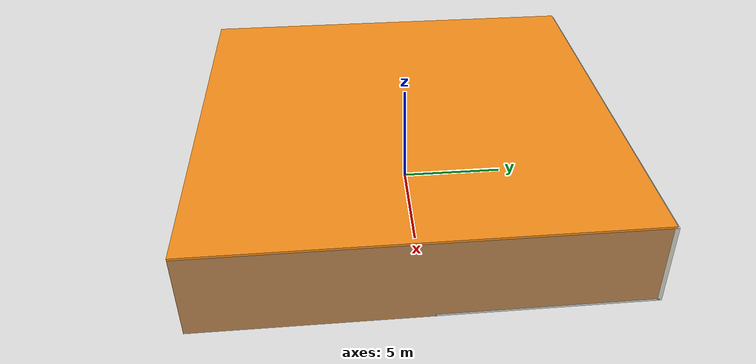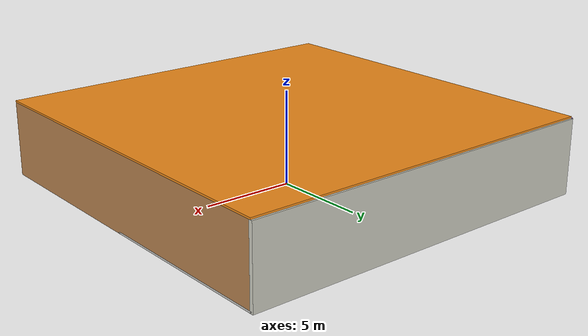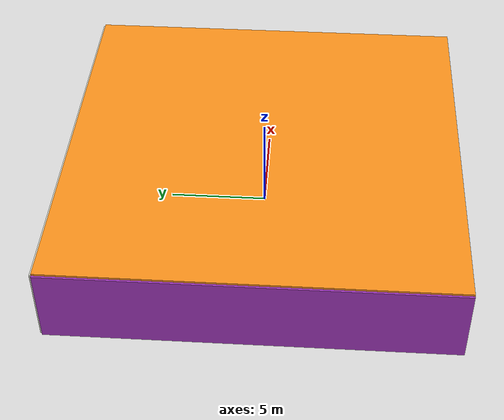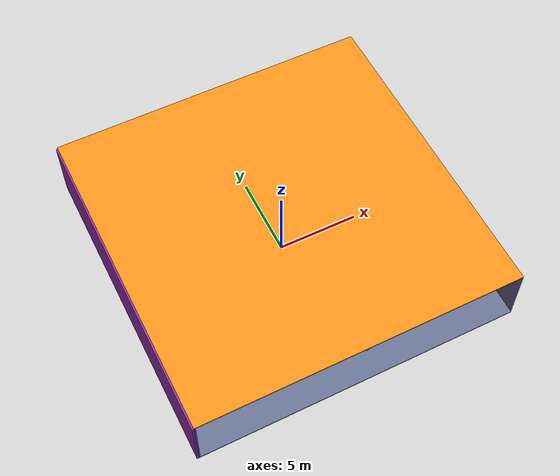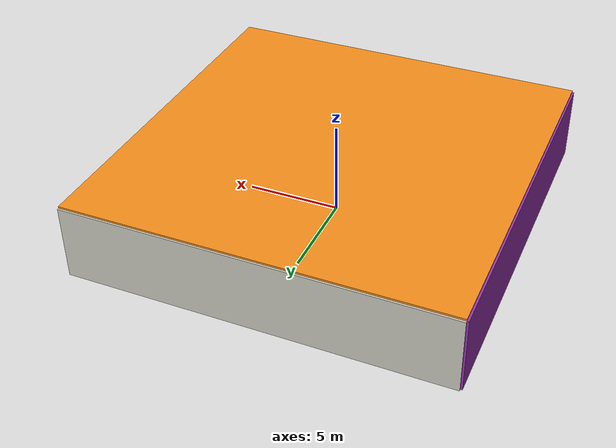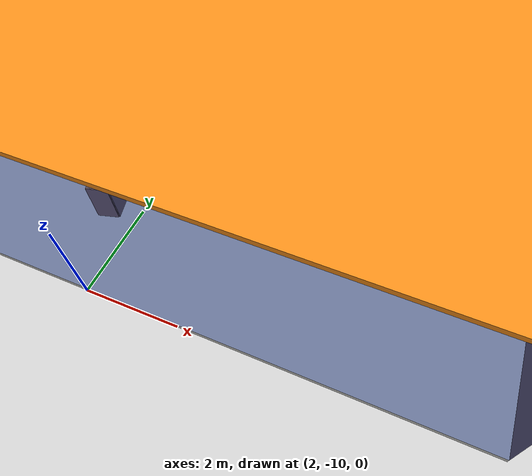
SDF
<sdf version="1.4">
 <world name="default">
  <physics type="ode">
   <max_step_size>0.001</max_step_size>
   <real_time_factor>1</real_time_factor>
   <real_time_update_rate>1000</real_time_update_rate>
   <gravity>0 0 -9.8</gravity>
  </physics>
  <scene><ambient>0.4 0.4 0.4 1</ambient><background>0.7 0.7 0.7 1</background><shadows>1</shadows></scene>
  <model name="Surrounding">
   <static>1</static>
   <link name="Ceiling">
    <collision name="Ceiling_Collision"><geometry><box><size>20 20 0.1</size></box></geometry></collision>
    <visual name="Ceiling_Visual">
     <geometry><box><size>20 20 0.1</size></box></geometry>
     <material>
      <script><uri>file://media/materials/scripts/gazebo.material</uri><name>Gazebo/Orange</name></script>
     </material>
    </visual>
    <pose>0 0 4.05 0 0 0</pose>
   </link>
   <link name="Wall_South">
    <collision name="Wall_South_Collision">
     <geometry><box><size>20 0 4</size></box></geometry>
     <pose>0 0 2 0 -0 0</pose>
    </collision>
    <visual name="Wall_South_Visual">
     <pose>0 0 2 0 -0 0</pose>
     <geometry><box><size>20 0 4</size></box></geometry>
     <material>
      <script><uri>file://media/materials/scripts/gazebo.material</uri><name>Gazebo/BlueTransparent</name></script>
     </material>
    </visual>
    <velocity_decay><linear>0</linear><angular>0</angular></velocity_decay>
    <pose>0 -10 0 0 -0 0</pose>
   </link>
   <link name="Wall_East">
    <collision name="Wall_21_Collision">
     <geometry><box><size>20 0 4</size></box></geometry>
     <pose>0 0 2 0 -0 0</pose>
    </collision>
    <visual name="Wall_21_Visual">
     <pose>0 0 2 0 -0 0</pose>
     <geometry><box><size>20 0 4</size></box></geometry>
     <material>
      <script><uri>file://media/materials/scripts/gazebo.material</uri><name>Gazebo/WoodPallet</name></script>
     </material>
    </visual>
    <velocity_decay><linear>0</linear><angular>0</angular></velocity_decay>
    <pose>10 0 0 0 -0 1.5708</pose>
   </link>
   <link name="Wall_North">
    <collision name="Wall_22_Collision">
     <geometry><box><size>20 0.2 4</size></box></geometry>
     <pose>0 0 2 0 -0 0</pose>
    </collision>
    <visual name="Wall_22_Visual">
     <pose>0 0 2 0 -0 0</pose>
     <geometry><box><size>20 0.2 4</size></box></geometry>
     <material>
      <script><uri>file://media/materials/scripts/gazebo.material</uri><name>Gazebo/PaintedWall</name></script>
     </material>
    </visual>
    <velocity_decay><linear>0</linear><angular>0</angular></velocity_decay>
    <pose>0 10 0 0 -0 0</pose>
   </link>
   <link name="Wall_West">
    <collision name="Wall_23_Collision">
     <geometry><box><size>20 0.2 4</size></box></geometry>
     <pose>0 0 2 0 -0 0</pose>
    </collision>
    <visual name="Wall_23_Visual">
     <pose>0 0 2 0 -0 0</pose>
     <geometry><box><size>20 0.2 4</size></box></geometry>
     <material>
      <script><uri>file://media/materials/scripts/gazebo.material</uri><name>Gazebo/PurpleGlow</name></script>
     </material>
    </visual>
    <velocity_decay><linear>0</linear><angular>0</angular></velocity_decay>
    <pose>-10 0 0 0 0 -1.5708</pose>
   </link>
   <link name="Ground_link">
    <collision name="collision">
     <pose>0 0 .05 0 -0 0</pose>
     <geometry><box><size>20 20 0.1</size></box></geometry>
    </collision>
    <visual name="visual">
     <pose>0 0 .05 0 -0 0</pose>
     <geometry><box><size>20 20 0.1</size></box></geometry>
     <material>
      <script><uri>file://media/materials/scripts/gazebo.material</uri><name>Gazebo/CeilingTiled</name></script>
     </material>
    </visual>
   </link>
   <static>1</static>
  </model>
  <spherical_coordinates>
   <surface_model>EARTH_WGS84</surface_model>
   <latitude_deg>0</latitude_deg>
   <longitude_deg>0</longitude_deg>
   <elevation>0</elevation>
   <heading_deg>0</heading_deg>
  </spherical_coordinates>
  <light name="lightball_0" type="diffuse">
   <diffuse>0.8 0.8 0.8 1</diffuse>
   <specular>0.2 0.2 0.2 1</specular>
   <attenuation>
    <range>100</range>
    <constant>0.7</constant>
    <linear>0.01</linear>
    <quadratic>0.001</quadratic>
   </attenuation>
   <direction>-0.5 0.1 -0.9</direction>
   <pose>9.49696206066 -0.435128394733 2.35816466352 0 0 0</pose>
  </light>
  <include><uri>model://cabinet</uri><pose>-7.48835675299 1.54217621659 0 0 0 0.670718831934</pose></include>
  <include>
   <uri>model://construction_cone</uri>
   <pose>-4.51123492626 4.47887849955 0 0 0 0.561629011878</pose>
  </include>
  <include>
   <uri>model://textured_shapes</uri>
   <pose>-0.895478750543 -4.00071445616 0 0 0 2.33429702475</pose>
  </include>
  <include><uri>model://cabinet</uri><pose>-1.22369571086 0.928066135431 0 0 0 1.94907103432</pose></include>
  <include><uri>model://cabinet</uri><pose>1.37732115264 -8.18935702753 0 0 0 0.26311361329</pose></include>
  <include>
   <uri>model://textured_shapes</uri>
   <pose>3.92103654002 -4.88037171618 0 0 0 0.677587949527</pose>
  </include>
  <include><uri>model://cabinet</uri><pose>7.83471887567 -3.83637418496 0 0 0 2.97874380007</pose></include>
 </world>
</sdf>

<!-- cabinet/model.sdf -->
<sdf version="1.5">
  <model name="cabinet">
    <static>true</static>
    <link name="cabinet_bottom_plate">
      <inertial>
        <pose>0 0 -1 0 0 0</pose>
        <inertia>
          <ixx>2.050000</ixx>
          <ixy>0</ixy>
          <ixz>0</ixz>
          <iyy>2.050000</iyy>
          <iyz>0</iyz>
          <izz>2.050000</izz>
        </inertia>
        <mass>25.000000</mass>
      </inertial>
      <collision name="cabinet_bottom_plate_geom">
        <pose>0 0 0.010000 0 0 0</pose>
        <geometry>
          <box>
            <size>0.450000 0.450000 0.020000</size>
          </box>
        </geometry>
      </collision>
      <visual name="cabinet_bottom_plate_geom_visual">
        <pose>0 0 0.010000 0 0 0</pose>
        <geometry>
          <box>
            <size>0.450000 0.450000 0.020000</size>
          </box>
        </geometry>
        <material>
          <script>
            <uri>model://media/materials/scripts/gazebo.material</uri>
            <name>Gazebo/Wood</name>
          </script>
        </material>
      </visual>
      <collision name="cabinet_bottom_plate_geom_cabinet_back_plate">
        <pose>0.235000 0 0.510000 0 0 0</pose>
        <geometry>
          <box>
            <size>0.020000 0.450000 1.020000</size>
          </box>
        </geometry>
      </collision>
      <visual name="cabinet_bottom_plate_geom_cabinet_back_plate_visual">
        <pose>0.235000 0 0.510000 0 0 0</pose>
        <geometry>
          <box>
            <size>0.020000 0.450000 1.020000</size>
          </box>
        </geometry>
        <material>
          <script>
            <uri>model://media/materials/scripts/gazebo.material</uri>
            <name>Gazebo/Wood</name>
          </script>
        </material>
      </visual>
      <collision name="cabinet_bottom_plate_geom_cabinet_left_plate">
        <pose>0 0.235000 0.510000 0 0 0</pose>
        <geometry>
          <box>
            <size>0.450000 0.020000 1.020000</size>
          </box>
        </geometry>
      </collision>
      <visual name="cabinet_bottom_plate_geom_cabinet_left_plate_visual">
        <pose>0 0.235000 0.510000 0 0 0</pose>
        <geometry>
          <box>
            <size>0.450000 0.020000 1.020000</size>
          </box>
        </geometry>
        <material>
          <script>
            <uri>model://media/materials/scripts/gazebo.material</uri>
            <name>Gazebo/Wood</name>
          </script>
        </material>
      </visual>
      <collision name="cabinet_bottom_plate_geom_cabinet_middle_plate">
        <pose>0 0 0.510000 0 0 0</pose>
        <geometry>
          <box>
            <size>0.450000 0.450000 0.020000</size>
          </box>
        </geometry>
      </collision>
      <visual name="cabinet_bottom_plate_geom_cabinet_middle_plate_visual">
        <pose>0 0 0.510000 0 0 0</pose>
        <geometry>
          <box>
            <size>0.450000 0.450000 0.020000</size>
          </box>
        </geometry>
        <material>
          <script>
            <uri>model://media/materials/scripts/gazebo.material</uri>
            <name>Gazebo/Wood</name>
          </script>
        </material>
      </visual>
      <collision name="cabinet_bottom_plate_geom_cabinet_right_plate">
        <pose>0 -0.235000 0.510000 0 0 0</pose>
        <geometry>
          <box>
            <size>0.450000 0.020000 1.020000</size>
          </box>
        </geometry>
      </collision>
      <visual name="cabinet_bottom_plate_geom_cabinet_right_plate_visual">
        <pose>0 -0.235000 0.510000 0 0 0</pose>
        <geometry>
          <box>
            <size>0.450000 0.020000 1.020000</size>
          </box>
        </geometry>
        <material>
          <script>
            <uri>model://media/materials/scripts/gazebo.material</uri>
            <name>Gazebo/Wood</name>
          </script>
        </material>
      </visual>
      <collision name="cabinet_bottom_plate_geom_cabinet_top_plate">
        <pose>0 0 1.010000 0 0 0</pose>
        <geometry>
          <box>
            <size>0.450000 0.450000 0.020000</size>
          </box>
        </geometry>
      </collision>
      <visual name="cabinet_bottom_plate_geom_cabinet_top_plate_visual">
        <pose>0 0 1.010000 0 0 0</pose>
        <geometry>
          <box>
            <size>0.450000 0.450000 0.020000</size>
          </box>
        </geometry>
        <material>
          <script>
            <uri>model://media/materials/scripts/gazebo.material</uri>
            <name>Gazebo/Wood</name>
          </script>
        </material>
      </visual>
    </link>
  </model>
</sdf>

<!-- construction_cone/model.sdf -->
<sdf version="1.5">
  <model name="Construction Cone">
    <link name="link">
      <collision name="collision">
        <geometry>
          <mesh>
            <scale>10 10 10</scale>
            <uri>file://isr-testbed/construction_cone/meshes/construction_cone.dae</uri>
          </mesh>
        </geometry>
      </collision>
      <visual name="visual">
        <geometry>
          <mesh>
            <scale>10 10 10</scale>
            <uri>file://isr-testbed/construction_cone/meshes/construction_cone.dae</uri>
          </mesh>
        </geometry>
      </visual>
    </link>
  </model>
</sdf>

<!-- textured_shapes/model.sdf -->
<sdf version="1.6">
  <model name="textured_shapes">
    <pose>0 0 0.5 0 0 0</pose>
    <link name="box">
      <pose>0 -1.5 0 0 0 0</pose>
      <collision name="collision">
        <geometry>
          <box>
            <size>1 1 1</size>
          </box>
        </geometry>
      </collision>
      <visual name="visual">
        <geometry>
          <box>
            <size>1 1 1</size>
          </box>
        </geometry>
        <material>
          <script>
            <uri>model://../model_source/models/textured_shapes/materials/scripts</uri>
            <uri>model://../model_source/models/textured_shapes/materials/textures</uri>
            <name>TexturedShape/Squares</name>
          </script>
        </material>
      </visual>
    </link>
    <link name="sphere">
      <collision name="collision">
        <geometry>
          <sphere>
            <radius>0.5</radius>
          </sphere>
        </geometry>
      </collision>
      <visual name="visual">
        <geometry>
          <sphere>
            <radius>0.5</radius>
          </sphere>
        </geometry>
        <material>
          <script>
            <uri>model://../model_source/models/textured_shapes/materials/scripts</uri>
            <uri>model://../model_source/models/textured_shapes/materials/textures</uri>
            <name>TexturedShape/Squares</name>
          </script>
        </material>
      </visual>
    </link>
    <link name="cylinder">
      <pose>0 1.5 0 0 0 0</pose>
      <collision name="collision">
        <geometry>
          <cylinder>
            <radius>0.5</radius>
            <length>1</length>
          </cylinder>
        </geometry>
      </collision>
      <visual name="visual">
        <geometry>
          <cylinder>
            <radius>0.5</radius>
            <length>1</length>
          </cylinder>
        </geometry>
        <material>
          <script>
            <uri>model://../model_source/models/textured_shapes/materials/scripts</uri>
            <uri>model://../model_source/models/textured_shapes/materials/textures</uri>
            <name>TexturedShape/Squares</name>
          </script>
        </material>
      </visual>
    </link>
  </model>
</sdf>
